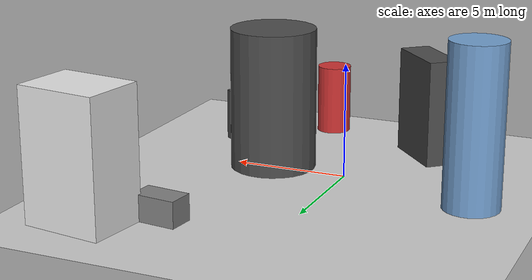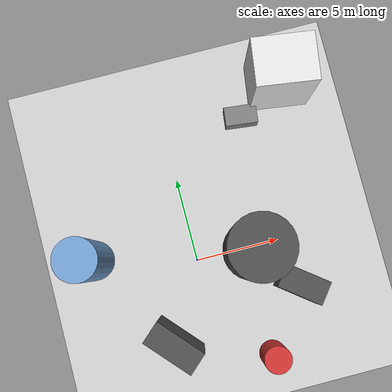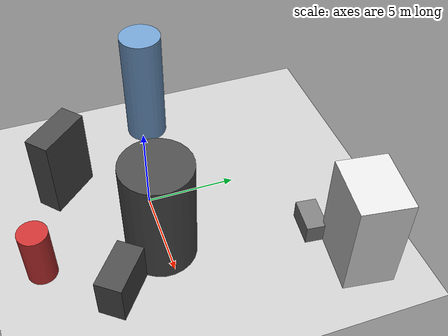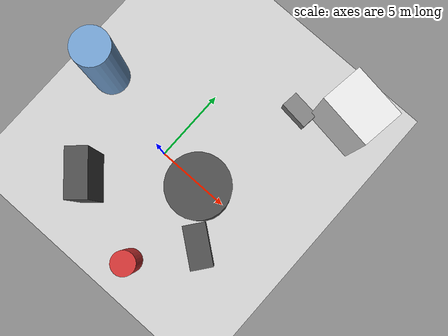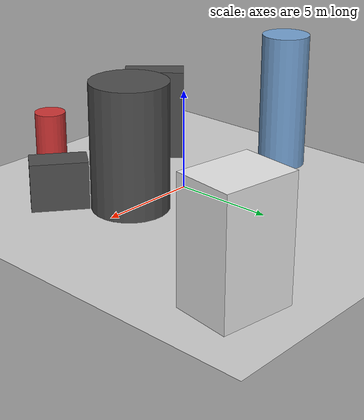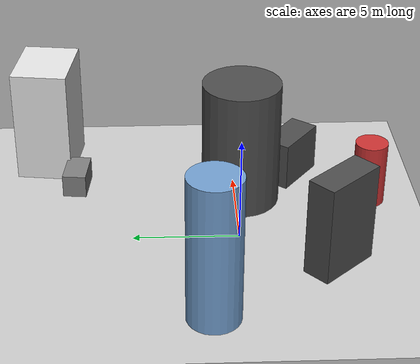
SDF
<?xml version='1.0'?>
<sdf version='1.6'>
  <world name='default'>
    <!-- Sun light -->
    <light name='sun' type='directional'>
      <cast_shadows>1</cast_shadows>
      <pose>0 0 10 0 0 0</pose>
      <diffuse>0.8 0.8 0.8 1</diffuse>
      <specular>0.2 0.2 0.2 1</specular>
      <attenuation>
        <range>1000</range>
        <constant>0.9</constant>
        <linear>0.01</linear>
        <quadratic>0.001</quadratic>
      </attenuation>
      <direction>-0.5 0.1 -0.9</direction>
    </light>

    <!-- Ground plane -->
    <model name='ground_plane'>
      <static>1</static>
      <link name='link'>
        <collision name='collision'>
          <geometry>
            <plane>
              <normal>0 0 1</normal>
              <size>100 100</size>
            </plane>
          </geometry>
          <surface>
            <contact>
              <collide_bitmask>65535</collide_bitmask>
              <ode/>
            </contact>
            <friction>
              <ode>
                <mu>100</mu>
                <mu2>50</mu2>
              </ode>
              <torsional><ode/></torsional>
            </friction>
            <bounce/>
          </surface>
          <max_contacts>10</max_contacts>
        </collision>
        <visual name='visual'>
          <cast_shadows>0</cast_shadows>
          <geometry>
            <plane>
              <normal>0 0 1</normal>
              <size>100 100</size>
            </plane>
          </geometry>
          <material>
            <script>
              <uri>file://media/materials/scripts/gazebo.material</uri>
              <n>Gazebo/Grey</n>
            </script>
          </material>
        </visual>
      </link>
    </model>

    <!-- Environment -->
    <magnetic_field>6e-06 2.3e-05 -4.2e-05</magnetic_field>
    <atmosphere type='adiabatic'/>
    <physics name='default_physics' default='0' type='ode'>
      <gravity>0 0 -9.8</gravity>
      <max_step_size>0.004</max_step_size>
      <real_time_factor>1</real_time_factor>
      <real_time_update_rate>250</real_time_update_rate>
    </physics>
    <scene>
      <ambient>0.4 0.4 0.4 1</ambient>
      <background>0.7 0.7 0.7 1</background>
      <shadows>1</shadows>
    </scene>
    <wind/>
    <spherical_coordinates>
      <surface_model>EARTH_WGS84</surface_model>
      <latitude_deg>0</latitude_deg>
      <longitude_deg>0</longitude_deg>
      <elevation>0</elevation>
      <heading_deg>0</heading_deg>
    </spherical_coordinates>

    <!-- ============ OBSTACLES (7) ============ -->
    <model name='obs_00'>
      <static>1</static>
      <link name='link'>
        <visual name='visual'>
          <geometry>
            <box>
              <size>3.5389 2.7420 5.6428</size>
            </box>
          </geometry>
          <material>
            <script>
              <n>Gazebo/White</n>
              <uri>file://media/materials/scripts/gazebo.material</uri>
            </script>
            <ambient>0.9 0.9 0.9 1</ambient>
          </material>
        </visual>
        <collision name='collision'>
          <geometry>
            <box>
              <size>3.5389 2.7420 5.6428</size>
            </box>
          </geometry>
          <max_contacts>10</max_contacts>
          <surface>
            <contact><ode/></contact>
            <bounce/>
            <friction>
              <ode><mu>1</mu><mu2>1</mu2></ode>
              <torsional><ode/></torsional>
            </friction>
          </surface>
        </collision>
      </link>
      <pose>7.3474 9.2623 2.8214 0 0 3.0052</pose>
    </model>

    <model name='obs_01'>
      <static>1</static>
      <link name='link'>
        <visual name='visual'>
          <geometry>
            <cylinder>
              <radius>1.2075</radius>
              <length>6.9423</length>
            </cylinder>
          </geometry>
          <material>
            <script>
              <n>Gazebo/Blue</n>
              <uri>file://media/materials/scripts/gazebo.material</uri>
            </script>
            <ambient>0.447 0.624 0.812 1</ambient>
          </material>
        </visual>
        <collision name='collision'>
          <geometry>
            <cylinder>
              <radius>1.2075</radius>
              <length>6.9423</length>
            </cylinder>
          </geometry>
          <max_contacts>10</max_contacts>
          <surface>
            <contact><ode/></contact>
            <bounce/>
            <friction>
              <ode><mu>1</mu><mu2>1</mu2></ode>
              <torsional><ode/></torsional>
            </friction>
          </surface>
        </collision>
      </link>
      <pose>-6.0208 1.5179 3.4712 0 0 1.9832</pose>
    </model>

    <model name='obs_02'>
      <static>1</static>
      <link name='link'>
        <visual name='visual'>
          <geometry>
            <cylinder>
              <radius>0.7857</radius>
              <length>3.1944</length>
            </cylinder>
          </geometry>
          <material>
            <script>
              <n>Gazebo/Red</n>
              <uri>file://media/materials/scripts/gazebo.material</uri>
            </script>
            <ambient>0.8 0.2 0.2 1</ambient>
          </material>
        </visual>
        <collision name='collision'>
          <geometry>
            <cylinder>
              <radius>0.7857</radius>
              <length>3.1944</length>
            </cylinder>
          </geometry>
          <max_contacts>10</max_contacts>
          <surface>
            <contact><ode/></contact>
            <bounce/>
            <friction>
              <ode><mu>1</mu><mu2>1</mu2></ode>
              <torsional><ode/></torsional>
            </friction>
          </surface>
        </collision>
      </link>
      <pose>2.9826 -6.5092 1.5972 0 0 0.2485</pose>
    </model>

    <model name='obs_03'>
      <static>1</static>
      <link name='link'>
        <visual name='visual'>
          <geometry>
            <box>
              <size>1.4362 2.7563 2.3562</size>
            </box>
          </geometry>
          <material>
            <script>
              <n>Gazebo/DarkGrey</n>
              <uri>file://media/materials/scripts/gazebo.material</uri>
            </script>
            <ambient>0.3 0.3 0.3 1</ambient>
          </material>
        </visual>
        <collision name='collision'>
          <geometry>
            <box>
              <size>1.4362 2.7563 2.3562</size>
            </box>
          </geometry>
          <max_contacts>10</max_contacts>
          <surface>
            <contact><ode/></contact>
            <bounce/>
            <friction>
              <ode><mu>1</mu><mu2>1</mu2></ode>
              <torsional><ode/></torsional>
            </friction>
          </surface>
        </collision>
      </link>
      <pose>5.6062 -2.8978 1.1781 0 0 0.9153</pose>
    </model>

    <model name='obs_04'>
      <static>1</static>
      <link name='link'>
        <visual name='visual'>
          <geometry>
            <cylinder>
              <radius>1.8867</radius>
              <length>6.2353</length>
            </cylinder>
          </geometry>
          <material>
            <script>
              <n>Gazebo/DarkGrey</n>
              <uri>file://media/materials/scripts/gazebo.material</uri>
            </script>
            <ambient>0.3 0.3 0.3 1</ambient>
          </material>
        </visual>
        <collision name='collision'>
          <geometry>
            <cylinder>
              <radius>1.8867</radius>
              <length>6.2353</length>
            </cylinder>
          </geometry>
          <max_contacts>10</max_contacts>
          <surface>
            <contact><ode/></contact>
            <bounce/>
            <friction>
              <ode><mu>1</mu><mu2>1</mu2></ode>
              <torsional><ode/></torsional>
            </friction>
          </surface>
        </collision>
      </link>
      <pose>3.4639 -0.2501 3.1176 0 0 2.4535</pose>
    </model>

    <model name='obs_05'>
      <static>1</static>
      <link name='link'>
        <visual name='visual'>
          <geometry>
            <box>
              <size>1.9490 1.1436 1.1155</size>
            </box>
          </geometry>
          <material>
            <script>
              <n>Gazebo/Grey</n>
              <uri>file://media/materials/scripts/gazebo.material</uri>
            </script>
            <ambient>0.5 0.5 0.5 1</ambient>
          </material>
        </visual>
        <collision name='collision'>
          <geometry>
            <box>
              <size>1.9490 1.1436 1.1155</size>
            </box>
          </geometry>
          <max_contacts>10</max_contacts>
          <surface>
            <contact><ode/></contact>
            <bounce/>
            <friction>
              <ode><mu>1</mu><mu2>1</mu2></ode>
              <torsional><ode/></torsional>
            </friction>
          </surface>
        </collision>
      </link>
      <pose>4.7305 7.7926 0.5578 0 0 3.0333</pose>
    </model>

    <model name='obs_06'>
      <static>1</static>
      <link name='link'>
        <visual name='visual'>
          <geometry>
            <box>
              <size>1.3808 3.1036 4.7487</size>
            </box>
          </geometry>
          <material>
            <script>
              <n>Gazebo/DarkGrey</n>
              <uri>file://media/materials/scripts/gazebo.material</uri>
            </script>
            <ambient>0.3 0.3 0.3 1</ambient>
          </material>
        </visual>
        <collision name='collision'>
          <geometry>
            <box>
              <size>1.3808 3.1036 4.7487</size>
            </box>
          </geometry>
          <max_contacts>10</max_contacts>
          <surface>
            <contact><ode/></contact>
            <bounce/>
            <friction>
              <ode><mu>1</mu><mu2>1</mu2></ode>
              <torsional><ode/></torsional>
            </friction>
          </surface>
        </collision>
      </link>
      <pose>-2.3786 -4.2695 2.3743 0 0 0.7371</pose>
    </model>

    <!-- GUI camera -->
    <gui fullscreen='0'>
      <camera name='user_camera'>
        <pose>-15 0 18 0 0.85 0.15</pose>
        <view_controller>orbit</view_controller>
        <projection_type>perspective</projection_type>
      </camera>
    </gui>
  </world>
</sdf>
